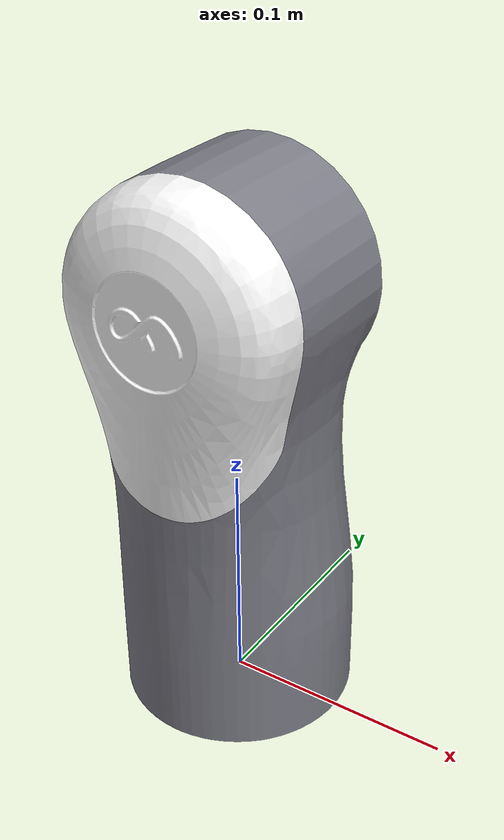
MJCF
<mujoco model="link5">
  <default>
    <default class="visual">
      <geom group="2" type="mesh" contype="0" conaffinity="0"/>
    </default>
    <default class="collision">
      <geom group="3" type="mesh"/>
    </default>
  </default>
  <asset>
    <material name="cover" specular="0.072304" shininess="0.092156872" rgba="0.969921 0.969921 0.969921 1.000000"/>
    <material name="robot" specular="0.600013" shininess="0.015686281" rgba="0.487364 0.487364 0.527718 1.000000"/>
    <mesh file="link5_0.obj"/>
    <mesh file="link5_1.obj"/>
  </asset>
  <worldbody>
    <body name="link5">
      <geom mesh="link5_0" material="robot" class="visual"/>
      <geom mesh="link5_1" material="cover" class="visual"/>
      <geom mesh="link5_0" class="collision"/>
      <geom mesh="link5_1" class="collision"/>
    </body>
  </worldbody>
</mujoco>
